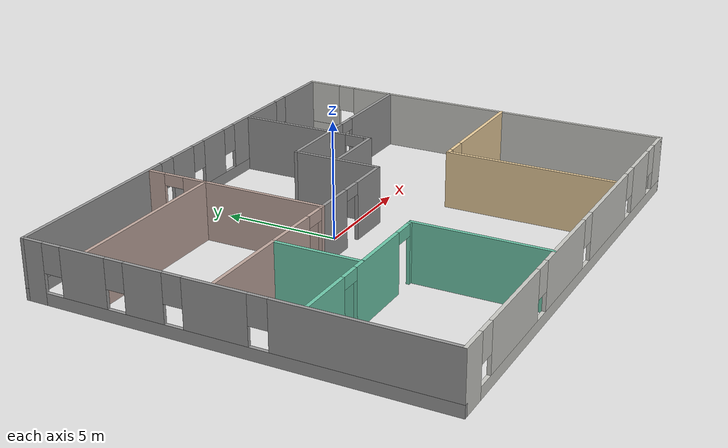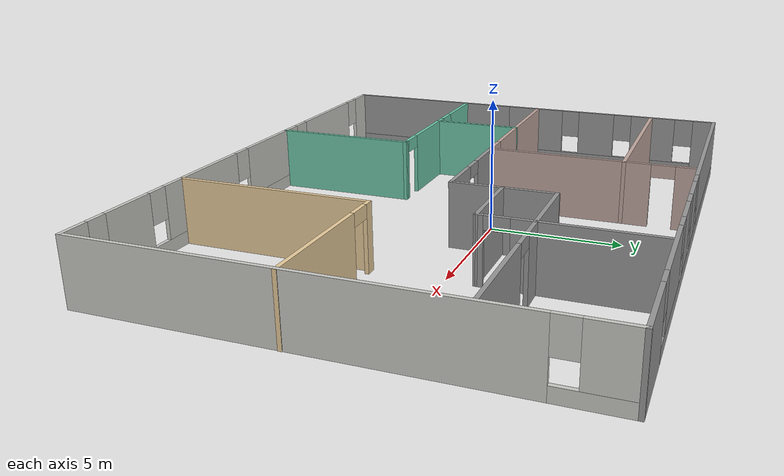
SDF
<?xml version='1.0'?>
<sdf version='1.6'>
  <model name='Building'>
    <pose frame=''>0.569378 -1.38226 0 0 -0 0</pose>
    <link name='Wall_1'>
      <pose frame=''>-10.4348 0 0 0 0 -1.5708</pose>
      <visual name='Wall_1_Visual_0'>
        <pose frame=''>-8.26713 0 1.25 0 -0 0</pose>
        <geometry>
          <box>
            <size>0.965742 0.15 2.5</size>
          </box>
        </geometry>
        <material>
          <script>
            <uri>file://media/materials/scripts/gazebo.material</uri>
            <name>Gazebo/Grey</name>
          </script>
          <ambient>1 1 1 1</ambient>
        </material>
        <meta>
          <layer>0</layer>
        </meta>
      </visual>
      <collision name='Wall_1_Collision_0'>
        <geometry>
          <box>
            <size>0.965742 0.15 2.5</size>
          </box>
        </geometry>
        <pose frame=''>-8.26713 0 1.25 0 -0 0</pose>
      </collision>
      <visual name='Wall_1_Visual_1'>
        <pose frame=''>0.482871 0 0.25 0 -0 0</pose>
        <geometry>
          <box>
            <size>16.5343 0.15 0.5</size>
          </box>
        </geometry>
        <material>
          <script>
            <uri>file://media/materials/scripts/gazebo.material</uri>
            <name>Gazebo/Grey</name>
          </script>
          <ambient>1 1 1 1</ambient>
        </material>
        <meta>
          <layer>0</layer>
        </meta>
      </visual>
      <collision name='Wall_1_Collision_1'>
        <geometry>
          <box>
            <size>16.5343 0.15 0.5</size>
          </box>
        </geometry>
        <pose frame=''>0.482871 0 0.25 0 -0 0</pose>
      </collision>
      <visual name='Wall_1_Visual_2'>
        <pose frame=''>-6.00096 0 1.5 0 -0 0</pose>
        <geometry>
          <box>
            <size>1.9666 0.15 2</size>
          </box>
        </geometry>
        <material>
          <script>
            <uri>file://media/materials/scripts/gazebo.material</uri>
            <name>Gazebo/Grey</name>
          </script>
          <ambient>1 1 1 1</ambient>
        </material>
        <meta>
          <layer>0</layer>
        </meta>
      </visual>
      <collision name='Wall_1_Collision_2'>
        <geometry>
          <box>
            <size>1.9666 0.15 2</size>
          </box>
        </geometry>
        <pose frame=''>-6.00096 0 1.5 0 -0 0</pose>
      </collision>
      <visual name='Wall_1_Visual_3'>
        <pose frame=''>-3.3971 0 1.5 0 -0 0</pose>
        <geometry>
          <box>
            <size>1.64112 0.15 2</size>
          </box>
        </geometry>
        <material>
          <script>
            <uri>file://media/materials/scripts/gazebo.material</uri>
            <name>Gazebo/Grey</name>
          </script>
          <ambient>1 1 1 1</ambient>
        </material>
        <meta>
          <layer>0</layer>
        </meta>
      </visual>
      <collision name='Wall_1_Collision_3'>
        <geometry>
          <box>
            <size>1.64112 0.15 2</size>
          </box>
        </geometry>
        <pose frame=''>-3.3971 0 1.5 0 -0 0</pose>
      </collision>
      <visual name='Wall_1_Visual_4'>
        <pose frame=''>-0.467756 0 1.5 0 -0 0</pose>
        <geometry>
          <box>
            <size>2.61757 0.15 2</size>
          </box>
        </geometry>
        <material>
          <script>
            <uri>file://media/materials/scripts/gazebo.material</uri>
            <name>Gazebo/Grey</name>
          </script>
          <ambient>1 1 1 1</ambient>
        </material>
        <meta>
          <layer>0</layer>
        </meta>
      </visual>
      <collision name='Wall_1_Collision_4'>
        <geometry>
          <box>
            <size>2.61757 0.15 2</size>
          </box>
        </geometry>
        <pose frame=''>-0.467756 0 1.5 0 -0 0</pose>
      </collision>
      <visual name='Wall_1_Visual_5'>
        <pose frame=''>5.19551 0 1.5 0 -0 0</pose>
        <geometry>
          <box>
            <size>7.10897 0.15 2</size>
          </box>
        </geometry>
        <material>
          <script>
            <uri>file://media/materials/scripts/gazebo.material</uri>
            <name>Gazebo/Grey</name>
          </script>
          <ambient>1 1 1 1</ambient>
        </material>
        <meta>
          <layer>0</layer>
        </meta>
      </visual>
      <collision name='Wall_1_Collision_5'>
        <geometry>
          <box>
            <size>7.10897 0.15 2</size>
          </box>
        </geometry>
        <pose frame=''>5.19551 0 1.5 0 -0 0</pose>
      </collision>
      <visual name='Wall_1_Visual_6'>
        <pose frame=''>-7.38426 0 1.9 0 -0 0</pose>
        <geometry>
          <box>
            <size>0.8 0.15 1.2</size>
          </box>
        </geometry>
        <material>
          <script>
            <uri>file://media/materials/scripts/gazebo.material</uri>
            <name>Gazebo/Grey</name>
          </script>
          <ambient>1 1 1 1</ambient>
        </material>
        <meta>
          <layer>0</layer>
        </meta>
      </visual>
      <collision name='Wall_1_Collision_6'>
        <geometry>
          <box>
            <size>0.8 0.15 1.2</size>
          </box>
        </geometry>
        <pose frame=''>-7.38426 0 1.9 0 -0 0</pose>
      </collision>
      <visual name='Wall_1_Visual_7'>
        <pose frame=''>-4.61766 0 1.9 0 -0 0</pose>
        <geometry>
          <box>
            <size>0.8 0.15 1.2</size>
          </box>
        </geometry>
        <material>
          <script>
            <uri>file://media/materials/scripts/gazebo.material</uri>
            <name>Gazebo/Grey</name>
          </script>
          <ambient>1 1 1 1</ambient>
        </material>
        <meta>
          <layer>0</layer>
        </meta>
      </visual>
      <collision name='Wall_1_Collision_7'>
        <geometry>
          <box>
            <size>0.8 0.15 1.2</size>
          </box>
        </geometry>
        <pose frame=''>-4.61766 0 1.9 0 -0 0</pose>
      </collision>
      <visual name='Wall_1_Visual_8'>
        <pose frame=''>-2.17654 0 1.9 0 -0 0</pose>
        <geometry>
          <box>
            <size>0.8 0.15 1.2</size>
          </box>
        </geometry>
        <material>
          <script>
            <uri>file://media/materials/scripts/gazebo.material</uri>
            <name>Gazebo/Grey</name>
          </script>
          <ambient>1 1 1 1</ambient>
        </material>
        <meta>
          <layer>0</layer>
        </meta>
      </visual>
      <collision name='Wall_1_Collision_8'>
        <geometry>
          <box>
            <size>0.8 0.15 1.2</size>
          </box>
        </geometry>
        <pose frame=''>-2.17654 0 1.9 0 -0 0</pose>
      </collision>
      <visual name='Wall_1_Visual_9'>
        <pose frame=''>1.24103 0 1.9 0 -0 0</pose>
        <geometry>
          <box>
            <size>0.8 0.15 1.2</size>
          </box>
        </geometry>
        <material>
          <script>
            <uri>file://media/materials/scripts/gazebo.material</uri>
            <name>Gazebo/Grey</name>
          </script>
          <ambient>1 1 1 1</ambient>
        </material>
        <meta>
          <layer>0</layer>
        </meta>
      </visual>
      <collision name='Wall_1_Collision_9'>
        <geometry>
          <box>
            <size>0.8 0.15 1.2</size>
          </box>
        </geometry>
        <pose frame=''>1.24103 0 1.9 0 -0 0</pose>
      </collision>
    </link>
    <link name='Wall_10'>
      <collision name='Wall_10_Collision'>
        <geometry>
          <box>
            <size>4 0.15 2.5</size>
          </box>
        </geometry>
        <pose frame=''>0 0 1.25 0 -0 0</pose>
      </collision>
      <visual name='Wall_10_Visual'>
        <pose frame=''>0 0 1.25 0 -0 0</pose>
        <geometry>
          <box>
            <size>4 0.15 2.5</size>
          </box>
        </geometry>
        <material>
          <script>
            <uri>file://media/materials/scripts/gazebo.material</uri>
            <name>Gazebo/Grey</name>
          </script>
          <ambient>0.760784 0.662745 0.627451 1</ambient>
        </material>
        <meta>
          <layer>0</layer>
        </meta>
      </visual>
      <pose frame=''>-8.46331 0.559038 0 0 -0 3.14159</pose>
    </link>
    <link name='Wall_12'>
      <pose frame=''>-4.73832 0.559038 0 0 -0 0</pose>
      <visual name='Wall_12_Visual_0'>
        <pose frame=''>-0.592728 0 1.25 0 -0 0</pose>
        <geometry>
          <box>
            <size>2.56454 0.15 2.5</size>
          </box>
        </geometry>
        <material>
          <script>
            <uri>file://media/materials/scripts/gazebo.material</uri>
            <name>Gazebo/Grey</name>
          </script>
          <ambient>0.760784 0.662745 0.627451 1</ambient>
        </material>
        <meta>
          <layer>0</layer>
        </meta>
      </visual>
      <collision name='Wall_12_Collision_0'>
        <geometry>
          <box>
            <size>2.56454 0.15 2.5</size>
          </box>
        </geometry>
        <pose frame=''>-0.592728 0 1.25 0 -0 0</pose>
      </collision>
      <visual name='Wall_12_Visual_1'>
        <pose frame=''>1.73227 0 1.25 0 -0 0</pose>
        <geometry>
          <box>
            <size>0.285456 0.15 2.5</size>
          </box>
        </geometry>
        <material>
          <script>
            <uri>file://media/materials/scripts/gazebo.material</uri>
            <name>Gazebo/Grey</name>
          </script>
          <ambient>0.760784 0.662745 0.627451 1</ambient>
        </material>
        <meta>
          <layer>0</layer>
        </meta>
      </visual>
      <collision name='Wall_12_Collision_1'>
        <geometry>
          <box>
            <size>0.285456 0.15 2.5</size>
          </box>
        </geometry>
        <pose frame=''>1.73227 0 1.25 0 -0 0</pose>
      </collision>
      <visual name='Wall_12_Visual_2'>
        <pose frame=''>1.13954 0 2.25 0 -0 0</pose>
        <geometry>
          <box>
            <size>0.9 0.15 0.5</size>
          </box>
        </geometry>
        <material>
          <script>
            <uri>file://media/materials/scripts/gazebo.material</uri>
            <name>Gazebo/Grey</name>
          </script>
          <ambient>0.760784 0.662745 0.627451 1</ambient>
        </material>
        <meta>
          <layer>0</layer>
        </meta>
      </visual>
      <collision name='Wall_12_Collision_2'>
        <geometry>
          <box>
            <size>0.9 0.15 0.5</size>
          </box>
        </geometry>
        <pose frame=''>1.13954 0 2.25 0 -0 0</pose>
      </collision>
    </link>
    <link name='Wall_13'>
      <collision name='Wall_13_Collision'>
        <geometry>
          <box>
            <size>5.5 0.15 2.5</size>
          </box>
        </geometry>
        <pose frame=''>0 0 1.25 0 -0 0</pose>
      </collision>
      <visual name='Wall_13_Visual'>
        <pose frame=''>0 0 1.25 0 -0 0</pose>
        <geometry>
          <box>
            <size>5.5 0.15 2.5</size>
          </box>
        </geometry>
        <material>
          <script>
            <uri>file://media/materials/scripts/gazebo.material</uri>
            <name>Gazebo/Grey</name>
          </script>
          <ambient>0.760784 0.662745 0.627451 1</ambient>
        </material>
        <meta>
          <layer>0</layer>
        </meta>
      </visual>
      <pose frame=''>-2.93835 3.23415 0 0 -0 1.57081</pose>
    </link>
    <link name='Wall_14'>
      <collision name='Wall_14_Collision'>
        <geometry>
          <box>
            <size>7.5 0.15 2.5</size>
          </box>
        </geometry>
        <pose frame=''>0 0 1.25 0 -0 0</pose>
      </collision>
      <visual name='Wall_14_Visual'>
        <pose frame=''>0 0 1.25 0 -0 0</pose>
        <geometry>
          <box>
            <size>7.5 0.15 2.5</size>
          </box>
        </geometry>
        <material>
          <script>
            <uri>file://media/materials/scripts/gazebo.material</uri>
            <name>Gazebo/Grey</name>
          </script>
          <ambient>0.760784 0.662745 0.627451 1</ambient>
        </material>
        <meta>
          <layer>0</layer>
        </meta>
      </visual>
      <pose frame=''>-6.61335 5.90915 0 0 0 -3.14156</pose>
    </link>
    <link name='Wall_16'>
      <pose frame=''>-2.93838 7.21526 0 0 -0 1.5708</pose>
      <visual name='Wall_16_Visual_0'>
        <pose frame=''>-0.831001 0 1.25 0 -0 0</pose>
        <geometry>
          <box>
            <size>1.1 0.15 2.5</size>
          </box>
        </geometry>
        <material>
          <script>
            <uri>file://media/materials/scripts/gazebo.material</uri>
            <name>Gazebo/Grey</name>
          </script>
          <ambient>0.760784 0.662745 0.627451 1</ambient>
        </material>
        <meta>
          <layer>0</layer>
        </meta>
      </visual>
      <collision name='Wall_16_Collision_0'>
        <geometry>
          <box>
            <size>1.1 0.15 2.5</size>
          </box>
        </geometry>
        <pose frame=''>-0.831001 0 1.25 0 -0 0</pose>
      </collision>
      <visual name='Wall_16_Visual_1'>
        <pose frame=''>0.999999 0 1.25 0 -0 0</pose>
        <geometry>
          <box>
            <size>0.762002 0.15 2.5</size>
          </box>
        </geometry>
        <material>
          <script>
            <uri>file://media/materials/scripts/gazebo.material</uri>
            <name>Gazebo/Grey</name>
          </script>
          <ambient>0.760784 0.662745 0.627451 1</ambient>
        </material>
        <meta>
          <layer>0</layer>
        </meta>
      </visual>
      <collision name='Wall_16_Collision_1'>
        <geometry>
          <box>
            <size>0.762002 0.15 2.5</size>
          </box>
        </geometry>
        <pose frame=''>0.999999 0 1.25 0 -0 0</pose>
      </collision>
      <visual name='Wall_16_Visual_2'>
        <pose frame=''>0.168998 0 2.25 0 -0 0</pose>
        <geometry>
          <box>
            <size>0.9 0.15 0.5</size>
          </box>
        </geometry>
        <material>
          <script>
            <uri>file://media/materials/scripts/gazebo.material</uri>
            <name>Gazebo/Grey</name>
          </script>
          <ambient>0.760784 0.662745 0.627451 1</ambient>
        </material>
        <meta>
          <layer>0</layer>
        </meta>
      </visual>
      <collision name='Wall_16_Collision_2'>
        <geometry>
          <box>
            <size>0.9 0.15 0.5</size>
          </box>
        </geometry>
        <pose frame=''>0.168998 0 2.25 0 -0 0</pose>
      </collision>
    </link>
    <link name='Wall_18'>
      <collision name='Wall_18_Collision'>
        <geometry>
          <box>
            <size>7.5 0.15 2.5</size>
          </box>
        </geometry>
        <pose frame=''>0 0 1.25 0 -0 0</pose>
      </collision>
      <visual name='Wall_18_Visual'>
        <pose frame=''>0 0 1.25 0 -0 0</pose>
        <geometry>
          <box>
            <size>7.5 0.15 2.5</size>
          </box>
        </geometry>
        <material>
          <script>
            <uri>file://media/materials/scripts/gazebo.material</uri>
            <name>Gazebo/Grey</name>
          </script>
          <ambient>0.921569 0.807843 0.615686 1</ambient>
        </material>
        <meta>
          <layer>0</layer>
        </meta>
      </visual>
      <pose frame=''>4.58481 -4.95144 0 0 -0 1.5708</pose>
    </link>
    <link name='Wall_19'>
      <pose frame=''>7.50981 -1.27643 0 0 -0 0</pose>
      <visual name='Wall_19_Visual_0'>
        <pose frame=''>-2.8039 0 1.25 0 -0 0</pose>
        <geometry>
          <box>
            <size>0.39219 0.15 2.5</size>
          </box>
        </geometry>
        <material>
          <script>
            <uri>file://media/materials/scripts/gazebo.material</uri>
            <name>Gazebo/Grey</name>
          </script>
          <ambient>0.921569 0.807843 0.615686 1</ambient>
        </material>
        <meta>
          <layer>0</layer>
        </meta>
      </visual>
      <collision name='Wall_19_Collision_0'>
        <geometry>
          <box>
            <size>0.39219 0.15 2.5</size>
          </box>
        </geometry>
        <pose frame=''>-2.8039 0 1.25 0 -0 0</pose>
      </collision>
      <visual name='Wall_19_Visual_1'>
        <pose frame=''>0.646095 0 1.25 0 -0 0</pose>
        <geometry>
          <box>
            <size>4.70781 0.15 2.5</size>
          </box>
        </geometry>
        <material>
          <script>
            <uri>file://media/materials/scripts/gazebo.material</uri>
            <name>Gazebo/Grey</name>
          </script>
          <ambient>0.921569 0.807843 0.615686 1</ambient>
        </material>
        <meta>
          <layer>0</layer>
        </meta>
      </visual>
      <collision name='Wall_19_Collision_1'>
        <geometry>
          <box>
            <size>4.70781 0.15 2.5</size>
          </box>
        </geometry>
        <pose frame=''>0.646095 0 1.25 0 -0 0</pose>
      </collision>
      <visual name='Wall_19_Visual_2'>
        <pose frame=''>-2.15781 0 2.25 0 -0 0</pose>
        <geometry>
          <box>
            <size>0.9 0.15 0.5</size>
          </box>
        </geometry>
        <material>
          <script>
            <uri>file://media/materials/scripts/gazebo.material</uri>
            <name>Gazebo/Grey</name>
          </script>
          <ambient>0.921569 0.807843 0.615686 1</ambient>
        </material>
        <meta>
          <layer>0</layer>
        </meta>
      </visual>
      <collision name='Wall_19_Collision_2'>
        <geometry>
          <box>
            <size>0.9 0.15 0.5</size>
          </box>
        </geometry>
        <pose frame=''>-2.15781 0 2.25 0 -0 0</pose>
      </collision>
    </link>
    <link name='Wall_2'>
      <pose frame=''>-0.009806 -8.675 0 0 -0 0</pose>
      <visual name='Wall_2_Visual_0'>
        <pose frame=''>-9.88903 0 1.25 0 -0 0</pose>
        <geometry>
          <box>
            <size>1.22195 0.15 2.5</size>
          </box>
        </geometry>
        <material>
          <script>
            <uri>file://media/materials/scripts/gazebo.material</uri>
            <name>Gazebo/CeilingTiled</name>
          </script>
          <ambient>1 1 1 1</ambient>
        </material>
        <meta>
          <layer>0</layer>
        </meta>
      </visual>
      <collision name='Wall_2_Collision_0'>
        <geometry>
          <box>
            <size>1.22195 0.15 2.5</size>
          </box>
        </geometry>
        <pose frame=''>-9.88903 0 1.25 0 -0 0</pose>
      </collision>
      <visual name='Wall_2_Visual_1'>
        <pose frame=''>0.610973 0 0.25 0 -0 0</pose>
        <geometry>
          <box>
            <size>19.7781 0.15 0.5</size>
          </box>
        </geometry>
        <material>
          <script>
            <uri>file://media/materials/scripts/gazebo.material</uri>
            <name>Gazebo/CeilingTiled</name>
          </script>
          <ambient>1 1 1 1</ambient>
        </material>
        <meta>
          <layer>0</layer>
        </meta>
      </visual>
      <collision name='Wall_2_Collision_1'>
        <geometry>
          <box>
            <size>19.7781 0.15 0.5</size>
          </box>
        </geometry>
        <pose frame=''>0.610973 0 0.25 0 -0 0</pose>
      </collision>
      <visual name='Wall_2_Visual_2'>
        <pose frame=''>-6.39625 0 1.5 0 -0 0</pose>
        <geometry>
          <box>
            <size>4.16361 0.15 2</size>
          </box>
        </geometry>
        <material>
          <script>
            <uri>file://media/materials/scripts/gazebo.material</uri>
            <name>Gazebo/CeilingTiled</name>
          </script>
          <ambient>1 1 1 1</ambient>
        </material>
        <meta>
          <layer>0</layer>
        </meta>
      </visual>
      <collision name='Wall_2_Collision_2'>
        <geometry>
          <box>
            <size>4.16361 0.15 2</size>
          </box>
        </geometry>
        <pose frame=''>-6.39625 0 1.5 0 -0 0</pose>
      </collision>
      <visual name='Wall_2_Visual_3'>
        <pose frame=''>-1.5547 0 1.5 0 -0 0</pose>
        <geometry>
          <box>
            <size>3.9195 0.15 2</size>
          </box>
        </geometry>
        <material>
          <script>
            <uri>file://media/materials/scripts/gazebo.material</uri>
            <name>Gazebo/CeilingTiled</name>
          </script>
          <ambient>1 1 1 1</ambient>
        </material>
        <meta>
          <layer>0</layer>
        </meta>
      </visual>
      <collision name='Wall_2_Collision_3'>
        <geometry>
          <box>
            <size>3.9195 0.15 2</size>
          </box>
        </geometry>
        <pose frame=''>-1.5547 0 1.5 0 -0 0</pose>
      </collision>
      <visual name='Wall_2_Visual_4'>
        <pose frame=''>3.40891 0 1.5 0 -0 0</pose>
        <geometry>
          <box>
            <size>4.40772 0.15 2</size>
          </box>
        </geometry>
        <material>
          <script>
            <uri>file://media/materials/scripts/gazebo.material</uri>
            <name>Gazebo/CeilingTiled</name>
          </script>
          <ambient>1 1 1 1</ambient>
        </material>
        <meta>
          <layer>0</layer>
        </meta>
      </visual>
      <collision name='Wall_2_Collision_4'>
        <geometry>
          <box>
            <size>4.40772 0.15 2</size>
          </box>
        </geometry>
        <pose frame=''>3.40891 0 1.5 0 -0 0</pose>
      </collision>
      <visual name='Wall_2_Visual_5'>
        <pose frame=''>7.47744 0 1.5 0 -0 0</pose>
        <geometry>
          <box>
            <size>2.12934 0.15 2</size>
          </box>
        </geometry>
        <material>
          <script>
            <uri>file://media/materials/scripts/gazebo.material</uri>
            <name>Gazebo/CeilingTiled</name>
          </script>
          <ambient>1 1 1 1</ambient>
        </material>
        <meta>
          <layer>0</layer>
        </meta>
      </visual>
      <collision name='Wall_2_Collision_5'>
        <geometry>
          <box>
            <size>2.12934 0.15 2</size>
          </box>
        </geometry>
        <pose frame=''>7.47744 0 1.5 0 -0 0</pose>
      </collision>
      <visual name='Wall_2_Visual_6'>
        <pose frame=''>9.92106 0 1.5 0 -0 0</pose>
        <geometry>
          <box>
            <size>1.15789 0.15 2</size>
          </box>
        </geometry>
        <material>
          <script>
            <uri>file://media/materials/scripts/gazebo.material</uri>
            <name>Gazebo/CeilingTiled</name>
          </script>
          <ambient>1 1 1 1</ambient>
        </material>
        <meta>
          <layer>0</layer>
        </meta>
      </visual>
      <collision name='Wall_2_Collision_6'>
        <geometry>
          <box>
            <size>1.15789 0.15 2</size>
          </box>
        </geometry>
        <pose frame=''>9.92106 0 1.5 0 -0 0</pose>
      </collision>
      <visual name='Wall_2_Visual_7'>
        <pose frame=''>-8.87805 0 1.9 0 -0 0</pose>
        <geometry>
          <box>
            <size>0.8 0.15 1.2</size>
          </box>
        </geometry>
        <material>
          <script>
            <uri>file://media/materials/scripts/gazebo.material</uri>
            <name>Gazebo/CeilingTiled</name>
          </script>
          <ambient>1 1 1 1</ambient>
        </material>
        <meta>
          <layer>0</layer>
        </meta>
      </visual>
      <collision name='Wall_2_Collision_7'>
        <geometry>
          <box>
            <size>0.8 0.15 1.2</size>
          </box>
        </geometry>
        <pose frame=''>-8.87805 0 1.9 0 -0 0</pose>
      </collision>
      <visual name='Wall_2_Visual_8'>
        <pose frame=''>-3.91445 0 1.9 0 -0 0</pose>
        <geometry>
          <box>
            <size>0.8 0.15 1.2</size>
          </box>
        </geometry>
        <material>
          <script>
            <uri>file://media/materials/scripts/gazebo.material</uri>
            <name>Gazebo/CeilingTiled</name>
          </script>
          <ambient>1 1 1 1</ambient>
        </material>
        <meta>
          <layer>0</layer>
        </meta>
      </visual>
      <collision name='Wall_2_Collision_8'>
        <geometry>
          <box>
            <size>0.8 0.15 1.2</size>
          </box>
        </geometry>
        <pose frame=''>-3.91445 0 1.9 0 -0 0</pose>
      </collision>
      <visual name='Wall_2_Visual_9'>
        <pose frame=''>0.805049 0 1.9 0 -0 0</pose>
        <geometry>
          <box>
            <size>0.8 0.15 1.2</size>
          </box>
        </geometry>
        <material>
          <script>
            <uri>file://media/materials/scripts/gazebo.material</uri>
            <name>Gazebo/CeilingTiled</name>
          </script>
          <ambient>1 1 1 1</ambient>
        </material>
        <meta>
          <layer>0</layer>
        </meta>
      </visual>
      <collision name='Wall_2_Collision_9'>
        <geometry>
          <box>
            <size>0.8 0.15 1.2</size>
          </box>
        </geometry>
        <pose frame=''>0.805049 0 1.9 0 -0 0</pose>
      </collision>
      <visual name='Wall_2_Visual_10'>
        <pose frame=''>6.01277 0 1.9 0 -0 0</pose>
        <geometry>
          <box>
            <size>0.8 0.15 1.2</size>
          </box>
        </geometry>
        <material>
          <script>
            <uri>file://media/materials/scripts/gazebo.material</uri>
            <name>Gazebo/CeilingTiled</name>
          </script>
          <ambient>1 1 1 1</ambient>
        </material>
        <meta>
          <layer>0</layer>
        </meta>
      </visual>
      <collision name='Wall_2_Collision_10'>
        <geometry>
          <box>
            <size>0.8 0.15 1.2</size>
          </box>
        </geometry>
        <pose frame=''>6.01277 0 1.9 0 -0 0</pose>
      </collision>
      <visual name='Wall_2_Visual_11'>
        <pose frame=''>8.94211 0 1.9 0 -0 0</pose>
        <geometry>
          <box>
            <size>0.8 0.15 1.2</size>
          </box>
        </geometry>
        <material>
          <script>
            <uri>file://media/materials/scripts/gazebo.material</uri>
            <name>Gazebo/CeilingTiled</name>
          </script>
          <ambient>1 1 1 1</ambient>
        </material>
        <meta>
          <layer>0</layer>
        </meta>
      </visual>
      <collision name='Wall_2_Collision_11'>
        <geometry>
          <box>
            <size>0.8 0.15 1.2</size>
          </box>
        </geometry>
        <pose frame=''>8.94211 0 1.9 0 -0 0</pose>
      </collision>
    </link>
    <link name='Wall_21'>
      <pose frame=''>-0.638315 0.559038 0 0 -0 0</pose>
      <visual name='Wall_21_Visual_0'>
        <pose frame=''>-1.42806 0 1.25 0 -0 0</pose>
        <geometry>
          <box>
            <size>1.89389 0.15 2.5</size>
          </box>
        </geometry>
        <material>
          <script>
            <uri>file://media/materials/scripts/gazebo.material</uri>
            <name>Gazebo/Grey</name>
          </script>
          <ambient>1 1 1 1</ambient>
        </material>
        <meta>
          <layer>0</layer>
        </meta>
      </visual>
      <collision name='Wall_21_Collision_0'>
        <geometry>
          <box>
            <size>1.89389 0.15 2.5</size>
          </box>
        </geometry>
        <pose frame=''>-1.42806 0 1.25 0 -0 0</pose>
      </collision>
      <visual name='Wall_21_Visual_1'>
        <pose frame=''>1.39694 0 1.25 0 -0 0</pose>
        <geometry>
          <box>
            <size>1.95611 0.15 2.5</size>
          </box>
        </geometry>
        <material>
          <script>
            <uri>file://media/materials/scripts/gazebo.material</uri>
            <name>Gazebo/Grey</name>
          </script>
          <ambient>1 1 1 1</ambient>
        </material>
        <meta>
          <layer>0</layer>
        </meta>
      </visual>
      <collision name='Wall_21_Collision_1'>
        <geometry>
          <box>
            <size>1.95611 0.15 2.5</size>
          </box>
        </geometry>
        <pose frame=''>1.39694 0 1.25 0 -0 0</pose>
      </collision>
      <visual name='Wall_21_Visual_2'>
        <pose frame=''>-0.031114 0 2.25 0 -0 0</pose>
        <geometry>
          <box>
            <size>0.9 0.15 0.5</size>
          </box>
        </geometry>
        <material>
          <script>
            <uri>file://media/materials/scripts/gazebo.material</uri>
            <name>Gazebo/Grey</name>
          </script>
          <ambient>1 1 1 1</ambient>
        </material>
        <meta>
          <layer>0</layer>
        </meta>
      </visual>
      <collision name='Wall_21_Collision_2'>
        <geometry>
          <box>
            <size>0.9 0.15 0.5</size>
          </box>
        </geometry>
        <pose frame=''>-0.031114 0 2.25 0 -0 0</pose>
      </collision>
    </link>
    <link name='Wall_22'>
      <collision name='Wall_22_Collision'>
        <geometry>
          <box>
            <size>4 0.15 2.5</size>
          </box>
        </geometry>
        <pose frame=''>0 0 1.25 0 -0 0</pose>
      </collision>
      <visual name='Wall_22_Visual'>
        <pose frame=''>0 0 1.25 0 -0 0</pose>
        <geometry>
          <box>
            <size>4 0.15 2.5</size>
          </box>
        </geometry>
        <material>
          <script>
            <uri>file://media/materials/scripts/gazebo.material</uri>
            <name>Gazebo/Grey</name>
          </script>
          <ambient>1 1 1 1</ambient>
        </material>
        <meta>
          <layer>0</layer>
        </meta>
      </visual>
      <pose frame=''>1.66169 2.48404 0 0 -0 1.5708</pose>
    </link>
    <link name='Wall_23'>
      <collision name='Wall_23_Collision'>
        <geometry>
          <box>
            <size>3 0.15 2.5</size>
          </box>
        </geometry>
        <pose frame=''>0 0 1.25 0 -0 0</pose>
      </collision>
      <visual name='Wall_23_Visual'>
        <pose frame=''>0 0 1.25 0 -0 0</pose>
        <geometry>
          <box>
            <size>3 0.15 2.5</size>
          </box>
        </geometry>
        <material>
          <script>
            <uri>file://media/materials/scripts/gazebo.material</uri>
            <name>Gazebo/Grey</name>
          </script>
          <ambient>1 1 1 1</ambient>
        </material>
        <meta>
          <layer>0</layer>
        </meta>
      </visual>
      <pose frame=''>3.08665 4.40915 0 0 -0 7.8e-05</pose>
    </link>
    <link name='Wall_24'>
      <collision name='Wall_24_Collision'>
        <geometry>
          <box>
            <size>4.268 0.15 2.5</size>
          </box>
        </geometry>
        <pose frame=''>0 0 1.25 0 -0 0</pose>
      </collision>
      <visual name='Wall_24_Visual'>
        <pose frame=''>0 0 1.25 0 -0 0</pose>
        <geometry>
          <box>
            <size>4.268 0.15 2.5</size>
          </box>
        </geometry>
        <material>
          <script>
            <uri>file://media/materials/scripts/gazebo.material</uri>
            <name>Gazebo/Grey</name>
          </script>
          <ambient>0 0 0 1</ambient>
        </material>
        <meta>
          <layer>0</layer>
        </meta>
      </visual>
      <pose frame=''>4.51162 6.46826 0 0 -0 1.5708</pose>
    </link>
    <link name='Wall_29'>
      <collision name='Wall_29_Collision'>
        <geometry>
          <box>
            <size>3 0.15 2.5</size>
          </box>
        </geometry>
        <pose frame=''>0 0 1.25 0 -0 0</pose>
      </collision>
      <visual name='Wall_29_Visual'>
        <pose frame=''>0 0 1.25 0 -0 0</pose>
        <geometry>
          <box>
            <size>3 0.15 2.5</size>
          </box>
        </geometry>
        <material>
          <script>
            <uri>file://media/materials/scripts/gazebo.material</uri>
            <name>Gazebo/Grey</name>
          </script>
          <ambient>1 1 1 1</ambient>
        </material>
        <meta>
          <layer>0</layer>
        </meta>
      </visual>
      <pose frame=''>3.09 2.4505 0 0 -0 0</pose>
    </link>
    <link name='Wall_3'>
      <pose frame=''>10.4152 0 0 0 -0 1.5708</pose>
      <visual name='Wall_3_Visual_0'>
        <pose frame=''>-1.20835 0 1.25 0 -0 0</pose>
        <geometry>
          <box>
            <size>15.0833 0.15 2.5</size>
          </box>
        </geometry>
        <material>
          <script>
            <uri>file://media/materials/scripts/gazebo.material</uri>
            <name>Gazebo/CeilingTiled</name>
          </script>
          <ambient>1 1 1 1</ambient>
        </material>
        <meta>
          <layer>0</layer>
        </meta>
      </visual>
      <collision name='Wall_3_Collision_0'>
        <geometry>
          <box>
            <size>15.0833 0.15 2.5</size>
          </box>
        </geometry>
        <pose frame=''>-1.20835 0 1.25 0 -0 0</pose>
      </collision>
      <visual name='Wall_3_Visual_1'>
        <pose frame=''>7.54165 0 0.25 0 -0 0</pose>
        <geometry>
          <box>
            <size>2.41671 0.15 0.5</size>
          </box>
        </geometry>
        <material>
          <script>
            <uri>file://media/materials/scripts/gazebo.material</uri>
            <name>Gazebo/CeilingTiled</name>
          </script>
          <ambient>1 1 1 1</ambient>
        </material>
        <meta>
          <layer>0</layer>
        </meta>
      </visual>
      <collision name='Wall_3_Collision_1'>
        <geometry>
          <box>
            <size>2.41671 0.15 0.5</size>
          </box>
        </geometry>
        <pose frame=''>7.54165 0 0.25 0 -0 0</pose>
      </collision>
      <visual name='Wall_3_Visual_2'>
        <pose frame=''>7.94165 0 1.5 0 -0 0</pose>
        <geometry>
          <box>
            <size>1.61671 0.15 2</size>
          </box>
        </geometry>
        <material>
          <script>
            <uri>file://media/materials/scripts/gazebo.material</uri>
            <name>Gazebo/CeilingTiled</name>
          </script>
          <ambient>1 1 1 1</ambient>
        </material>
        <meta>
          <layer>0</layer>
        </meta>
      </visual>
      <collision name='Wall_3_Collision_2'>
        <geometry>
          <box>
            <size>1.61671 0.15 2</size>
          </box>
        </geometry>
        <pose frame=''>7.94165 0 1.5 0 -0 0</pose>
      </collision>
      <visual name='Wall_3_Visual_3'>
        <pose frame=''>6.73329 0 1.9 0 -0 0</pose>
        <geometry>
          <box>
            <size>0.8 0.15 1.2</size>
          </box>
        </geometry>
        <material>
          <script>
            <uri>file://media/materials/scripts/gazebo.material</uri>
            <name>Gazebo/CeilingTiled</name>
          </script>
          <ambient>1 1 1 1</ambient>
        </material>
        <meta>
          <layer>0</layer>
        </meta>
      </visual>
      <collision name='Wall_3_Collision_3'>
        <geometry>
          <box>
            <size>0.8 0.15 1.2</size>
          </box>
        </geometry>
        <pose frame=''>6.73329 0 1.9 0 -0 0</pose>
      </collision>
    </link>
    <link name='Wall_30'>
      <pose frame=''>4.51331 3.42988 0 0 -0 1.57252</pose>
      <visual name='Wall_30_Visual_0'>
        <pose frame=''>-0.890603 0 1.25 0 -0 0</pose>
        <geometry>
          <box>
            <size>0.327334 0.15 2.5</size>
          </box>
        </geometry>
        <material>
          <script>
            <uri>file://media/materials/scripts/gazebo.material</uri>
            <name>Gazebo/Grey</name>
          </script>
          <ambient>1 1 1 1</ambient>
        </material>
        <meta>
          <layer>0</layer>
        </meta>
      </visual>
      <collision name='Wall_30_Collision_0'>
        <geometry>
          <box>
            <size>0.327334 0.15 2.5</size>
          </box>
        </geometry>
        <pose frame=''>-0.890603 0 1.25 0 -0 0</pose>
      </collision>
      <visual name='Wall_30_Visual_1'>
        <pose frame=''>0.613667 0 1.25 0 -0 0</pose>
        <geometry>
          <box>
            <size>0.881207 0.15 2.5</size>
          </box>
        </geometry>
        <material>
          <script>
            <uri>file://media/materials/scripts/gazebo.material</uri>
            <name>Gazebo/Grey</name>
          </script>
          <ambient>1 1 1 1</ambient>
        </material>
        <meta>
          <layer>0</layer>
        </meta>
      </visual>
      <collision name='Wall_30_Collision_1'>
        <geometry>
          <box>
            <size>0.881207 0.15 2.5</size>
          </box>
        </geometry>
        <pose frame=''>0.613667 0 1.25 0 -0 0</pose>
      </collision>
      <visual name='Wall_30_Visual_2'>
        <pose frame=''>-0.276937 0 2.25 0 -0 0</pose>
        <geometry>
          <box>
            <size>0.9 0.15 0.5</size>
          </box>
        </geometry>
        <material>
          <script>
            <uri>file://media/materials/scripts/gazebo.material</uri>
            <name>Gazebo/Grey</name>
          </script>
          <ambient>1 1 1 1</ambient>
        </material>
        <meta>
          <layer>0</layer>
        </meta>
      </visual>
      <collision name='Wall_30_Collision_2'>
        <geometry>
          <box>
            <size>0.9 0.15 0.5</size>
          </box>
        </geometry>
        <pose frame=''>-0.276937 0 2.25 0 -0 0</pose>
      </collision>
    </link>
    <link name='Wall_32'>
      <pose frame=''>7.43665 4.40915 0 0 0 -3.8e-05</pose>
      <visual name='Wall_32_Visual_0'>
        <pose frame=''>-2.44184 0 1.25 0 -0 0</pose>
        <geometry>
          <box>
            <size>1.11631 0.15 2.5</size>
          </box>
        </geometry>
        <material>
          <script>
            <uri>file://media/materials/scripts/gazebo.material</uri>
            <name>Gazebo/Grey</name>
          </script>
          <ambient>0 0 0 1</ambient>
        </material>
        <meta>
          <layer>0</layer>
        </meta>
      </visual>
      <collision name='Wall_32_Collision_0'>
        <geometry>
          <box>
            <size>1.11631 0.15 2.5</size>
          </box>
        </geometry>
        <pose frame=''>-2.44184 0 1.25 0 -0 0</pose>
      </collision>
      <visual name='Wall_32_Visual_1'>
        <pose frame=''>1.00815 0 1.25 0 -0 0</pose>
        <geometry>
          <box>
            <size>3.98369 0.15 2.5</size>
          </box>
        </geometry>
        <material>
          <script>
            <uri>file://media/materials/scripts/gazebo.material</uri>
            <name>Gazebo/Grey</name>
          </script>
          <ambient>0 0 0 1</ambient>
        </material>
        <meta>
          <layer>0</layer>
        </meta>
      </visual>
      <collision name='Wall_32_Collision_1'>
        <geometry>
          <box>
            <size>3.98369 0.15 2.5</size>
          </box>
        </geometry>
        <pose frame=''>1.00815 0 1.25 0 -0 0</pose>
      </collision>
      <visual name='Wall_32_Visual_2'>
        <pose frame=''>-1.43369 0 2.25 0 -0 0</pose>
        <geometry>
          <box>
            <size>0.9 0.15 0.5</size>
          </box>
        </geometry>
        <material>
          <script>
            <uri>file://media/materials/scripts/gazebo.material</uri>
            <name>Gazebo/Grey</name>
          </script>
          <ambient>0 0 0 1</ambient>
        </material>
        <meta>
          <layer>0</layer>
        </meta>
      </visual>
      <collision name='Wall_32_Collision_2'>
        <geometry>
          <box>
            <size>0.9 0.15 0.5</size>
          </box>
        </geometry>
        <pose frame=''>-1.43369 0 2.25 0 -0 0</pose>
      </collision>
    </link>
    <link name='Wall_4'>
      <pose frame=''>-0.009806 8.675 0 0 -0 3.14159</pose>
      <visual name='Wall_4_Visual_0'>
        <pose frame=''>-9.10735 0 1.25 0 -0 0</pose>
        <geometry>
          <box>
            <size>2.7853 0.15 2.5</size>
          </box>
        </geometry>
        <material>
          <script>
            <uri>file://media/materials/scripts/gazebo.material</uri>
            <name>Gazebo/Grey</name>
          </script>
          <ambient>1 1 1 1</ambient>
        </material>
        <meta>
          <layer>0</layer>
        </meta>
      </visual>
      <collision name='Wall_4_Collision_0'>
        <geometry>
          <box>
            <size>2.7853 0.15 2.5</size>
          </box>
        </geometry>
        <pose frame=''>-9.10735 0 1.25 0 -0 0</pose>
      </collision>
      <visual name='Wall_4_Visual_1'>
        <pose frame=''>1.39265 0 0.25 0 -0 0</pose>
        <geometry>
          <box>
            <size>18.2147 0.15 0.5</size>
          </box>
        </geometry>
        <material>
          <script>
            <uri>file://media/materials/scripts/gazebo.material</uri>
            <name>Gazebo/Grey</name>
          </script>
          <ambient>1 1 1 1</ambient>
        </material>
        <meta>
          <layer>0</layer>
        </meta>
      </visual>
      <collision name='Wall_4_Collision_1'>
        <geometry>
          <box>
            <size>18.2147 0.15 0.5</size>
          </box>
        </geometry>
        <pose frame=''>1.39265 0 0.25 0 -0 0</pose>
      </collision>
      <visual name='Wall_4_Visual_2'>
        <pose frame=''>-5.11769 0 1.5 0 -0 0</pose>
        <geometry>
          <box>
            <size>3.59401 0.15 2</size>
          </box>
        </geometry>
        <material>
          <script>
            <uri>file://media/materials/scripts/gazebo.material</uri>
            <name>Gazebo/Grey</name>
          </script>
          <ambient>1 1 1 1</ambient>
        </material>
        <meta>
          <layer>0</layer>
        </meta>
      </visual>
      <collision name='Wall_4_Collision_2'>
        <geometry>
          <box>
            <size>3.59401 0.15 2</size>
          </box>
        </geometry>
        <pose frame=''>-5.11769 0 1.5 0 -0 0</pose>
      </collision>
      <visual name='Wall_4_Visual_3'>
        <pose frame=''>-1.74081 0 1.5 0 -0 0</pose>
        <geometry>
          <box>
            <size>1.55975 0.15 2</size>
          </box>
        </geometry>
        <material>
          <script>
            <uri>file://media/materials/scripts/gazebo.material</uri>
            <name>Gazebo/Grey</name>
          </script>
          <ambient>1 1 1 1</ambient>
        </material>
        <meta>
          <layer>0</layer>
        </meta>
      </visual>
      <collision name='Wall_4_Collision_3'>
        <geometry>
          <box>
            <size>1.55975 0.15 2</size>
          </box>
        </geometry>
        <pose frame=''>-1.74081 0 1.5 0 -0 0</pose>
      </collision>
      <visual name='Wall_4_Visual_4'>
        <pose frame=''>0.578252 0 1.5 0 -0 0</pose>
        <geometry>
          <box>
            <size>1.47838 0.15 2</size>
          </box>
        </geometry>
        <material>
          <script>
            <uri>file://media/materials/scripts/gazebo.material</uri>
            <name>Gazebo/Grey</name>
          </script>
          <ambient>1 1 1 1</ambient>
        </material>
        <meta>
          <layer>0</layer>
        </meta>
      </visual>
      <collision name='Wall_4_Collision_4'>
        <geometry>
          <box>
            <size>1.47838 0.15 2</size>
          </box>
        </geometry>
        <pose frame=''>0.578252 0 1.5 0 -0 0</pose>
      </collision>
      <visual name='Wall_4_Visual_5'>
        <pose frame=''>6.30872 0 1.5 0 -0 0</pose>
        <geometry>
          <box>
            <size>8.38256 0.15 2</size>
          </box>
        </geometry>
        <material>
          <script>
            <uri>file://media/materials/scripts/gazebo.material</uri>
            <name>Gazebo/Grey</name>
          </script>
          <ambient>1 1 1 1</ambient>
        </material>
        <meta>
          <layer>0</layer>
        </meta>
      </visual>
      <collision name='Wall_4_Collision_5'>
        <geometry>
          <box>
            <size>8.38256 0.15 2</size>
          </box>
        </geometry>
        <pose frame=''>6.30872 0 1.5 0 -0 0</pose>
      </collision>
      <visual name='Wall_4_Visual_6'>
        <pose frame=''>-7.3147 0 1.9 0 -0 0</pose>
        <geometry>
          <box>
            <size>0.8 0.15 1.2</size>
          </box>
        </geometry>
        <material>
          <script>
            <uri>file://media/materials/scripts/gazebo.material</uri>
            <name>Gazebo/Grey</name>
          </script>
          <ambient>1 1 1 1</ambient>
        </material>
        <meta>
          <layer>0</layer>
        </meta>
      </visual>
      <collision name='Wall_4_Collision_6'>
        <geometry>
          <box>
            <size>0.8 0.15 1.2</size>
          </box>
        </geometry>
        <pose frame=''>-7.3147 0 1.9 0 -0 0</pose>
      </collision>
      <visual name='Wall_4_Visual_7'>
        <pose frame=''>-2.92069 0 1.9 0 -0 0</pose>
        <geometry>
          <box>
            <size>0.8 0.15 1.2</size>
          </box>
        </geometry>
        <material>
          <script>
            <uri>file://media/materials/scripts/gazebo.material</uri>
            <name>Gazebo/Grey</name>
          </script>
          <ambient>1 1 1 1</ambient>
        </material>
        <meta>
          <layer>0</layer>
        </meta>
      </visual>
      <collision name='Wall_4_Collision_7'>
        <geometry>
          <box>
            <size>0.8 0.15 1.2</size>
          </box>
        </geometry>
        <pose frame=''>-2.92069 0 1.9 0 -0 0</pose>
      </collision>
      <visual name='Wall_4_Visual_8'>
        <pose frame=''>-0.560937 0 1.9 0 -0 0</pose>
        <geometry>
          <box>
            <size>0.8 0.15 1.2</size>
          </box>
        </geometry>
        <material>
          <script>
            <uri>file://media/materials/scripts/gazebo.material</uri>
            <name>Gazebo/Grey</name>
          </script>
          <ambient>1 1 1 1</ambient>
        </material>
        <meta>
          <layer>0</layer>
        </meta>
      </visual>
      <collision name='Wall_4_Collision_8'>
        <geometry>
          <box>
            <size>0.8 0.15 1.2</size>
          </box>
        </geometry>
        <pose frame=''>-0.560937 0 1.9 0 -0 0</pose>
      </collision>
      <visual name='Wall_4_Visual_9'>
        <pose frame=''>1.71744 0 1.9 0 -0 0</pose>
        <geometry>
          <box>
            <size>0.8 0.15 1.2</size>
          </box>
        </geometry>
        <material>
          <script>
            <uri>file://media/materials/scripts/gazebo.material</uri>
            <name>Gazebo/Grey</name>
          </script>
          <ambient>1 1 1 1</ambient>
        </material>
        <meta>
          <layer>0</layer>
        </meta>
      </visual>
      <collision name='Wall_4_Collision_9'>
        <geometry>
          <box>
            <size>0.8 0.15 1.2</size>
          </box>
        </geometry>
        <pose frame=''>1.71744 0 1.9 0 -0 0</pose>
      </collision>
    </link>
    <link name='Wall_6'>
      <collision name='Wall_6_Collision'>
        <geometry>
          <box>
            <size>5.75 0.15 2.5</size>
          </box>
        </geometry>
        <pose frame=''>0 0 1.25 0 -0 0</pose>
      </collision>
      <visual name='Wall_6_Visual'>
        <pose frame=''>0 0 1.25 0 -0 0</pose>
        <geometry>
          <box>
            <size>5.75 0.15 2.5</size>
          </box>
        </geometry>
        <material>
          <script>
            <uri>file://media/materials/scripts/gazebo.material</uri>
            <name>Gazebo/Grey</name>
          </script>
          <ambient>0.435294 0.796078 0.67451 1</ambient>
        </material>
        <meta>
          <layer>0</layer>
        </meta>
      </visual>
      <pose frame=''>-2.68597 -5.85697 0 0 -0 1.5708</pose>
    </link>
    <link name='Wall_7'>
      <pose frame=''>-6.48597 -3.05697 0 0 -0 3.14159</pose>
      <visual name='Wall_7_Visual_0'>
        <pose frame=''>-3.72816 0 1.25 0 -0 0</pose>
        <geometry>
          <box>
            <size>0.293686 0.15 2.5</size>
          </box>
        </geometry>
        <material>
          <script>
            <uri>file://media/materials/scripts/gazebo.material</uri>
            <name>Gazebo/Grey</name>
          </script>
          <ambient>0.435294 0.796078 0.67451 1</ambient>
        </material>
        <meta>
          <layer>0</layer>
        </meta>
      </visual>
      <collision name='Wall_7_Collision_0'>
        <geometry>
          <box>
            <size>0.293686 0.15 2.5</size>
          </box>
        </geometry>
        <pose frame=''>-3.72816 0 1.25 0 -0 0</pose>
      </collision>
      <visual name='Wall_7_Visual_1'>
        <pose frame=''>-1.05636 0 1.25 0 -0 0</pose>
        <geometry>
          <box>
            <size>3.2499 0.15 2.5</size>
          </box>
        </geometry>
        <material>
          <script>
            <uri>file://media/materials/scripts/gazebo.material</uri>
            <name>Gazebo/Grey</name>
          </script>
          <ambient>0.435294 0.796078 0.67451 1</ambient>
        </material>
        <meta>
          <layer>0</layer>
        </meta>
      </visual>
      <collision name='Wall_7_Collision_1'>
        <geometry>
          <box>
            <size>3.2499 0.15 2.5</size>
          </box>
        </geometry>
        <pose frame=''>-1.05636 0 1.25 0 -0 0</pose>
      </collision>
      <visual name='Wall_7_Visual_2'>
        <pose frame=''>2.67179 0 1.25 0 -0 0</pose>
        <geometry>
          <box>
            <size>2.40641 0.15 2.5</size>
          </box>
        </geometry>
        <material>
          <script>
            <uri>file://media/materials/scripts/gazebo.material</uri>
            <name>Gazebo/Grey</name>
          </script>
          <ambient>0.435294 0.796078 0.67451 1</ambient>
        </material>
        <meta>
          <layer>0</layer>
        </meta>
      </visual>
      <collision name='Wall_7_Collision_2'>
        <geometry>
          <box>
            <size>2.40641 0.15 2.5</size>
          </box>
        </geometry>
        <pose frame=''>2.67179 0 1.25 0 -0 0</pose>
      </collision>
      <visual name='Wall_7_Visual_3'>
        <pose frame=''>-3.13131 0 2.25 0 -0 0</pose>
        <geometry>
          <box>
            <size>0.9 0.15 0.5</size>
          </box>
        </geometry>
        <material>
          <script>
            <uri>file://media/materials/scripts/gazebo.material</uri>
            <name>Gazebo/Grey</name>
          </script>
          <ambient>0.435294 0.796078 0.67451 1</ambient>
        </material>
        <meta>
          <layer>0</layer>
        </meta>
      </visual>
      <collision name='Wall_7_Collision_3'>
        <geometry>
          <box>
            <size>0.9 0.15 0.5</size>
          </box>
        </geometry>
        <pose frame=''>-3.13131 0 2.25 0 -0 0</pose>
      </collision>
      <visual name='Wall_7_Visual_4'>
        <pose frame=''>1.01859 0 2.25 0 -0 0</pose>
        <geometry>
          <box>
            <size>0.9 0.15 0.5</size>
          </box>
        </geometry>
        <material>
          <script>
            <uri>file://media/materials/scripts/gazebo.material</uri>
            <name>Gazebo/Grey</name>
          </script>
          <ambient>0.435294 0.796078 0.67451 1</ambient>
        </material>
        <meta>
          <layer>0</layer>
        </meta>
      </visual>
      <collision name='Wall_7_Collision_4'>
        <geometry>
          <box>
            <size>0.9 0.15 0.5</size>
          </box>
        </geometry>
        <pose frame=''>1.01859 0 2.25 0 -0 0</pose>
      </collision>
    </link>
    <link name='Wall_9'>
      <collision name='Wall_9_Collision'>
        <geometry>
          <box>
            <size>3.75 0.15 2.5</size>
          </box>
        </geometry>
        <pose frame=''>0 0 1.25 0 -0 0</pose>
      </collision>
      <visual name='Wall_9_Visual'>
        <pose frame=''>0 0 1.25 0 -0 0</pose>
        <geometry>
          <box>
            <size>3.75 0.15 2.5</size>
          </box>
        </geometry>
        <material>
          <script>
            <uri>file://media/materials/scripts/gazebo.material</uri>
            <name>Gazebo/Grey</name>
          </script>
          <ambient>0.435294 0.796078 0.67451 1</ambient>
        </material>
        <meta>
          <layer>0</layer>
        </meta>
      </visual>
      <pose frame=''>-6.53831 -1.24096 0 0 -0 1.5708</pose>
    </link>
    <static>1</static>
  </model>
</sdf>
